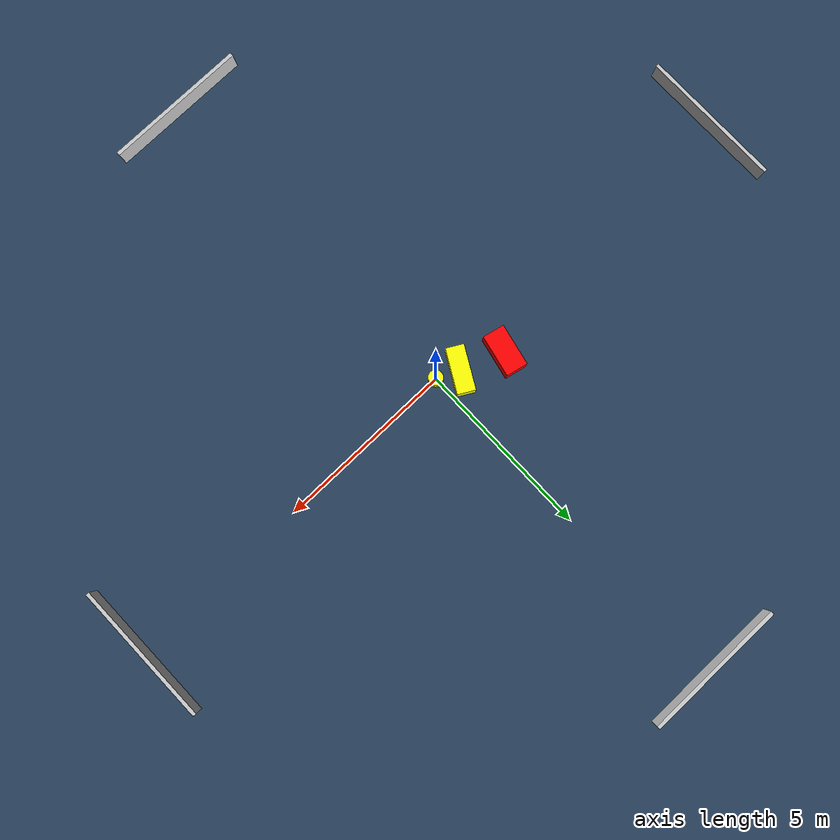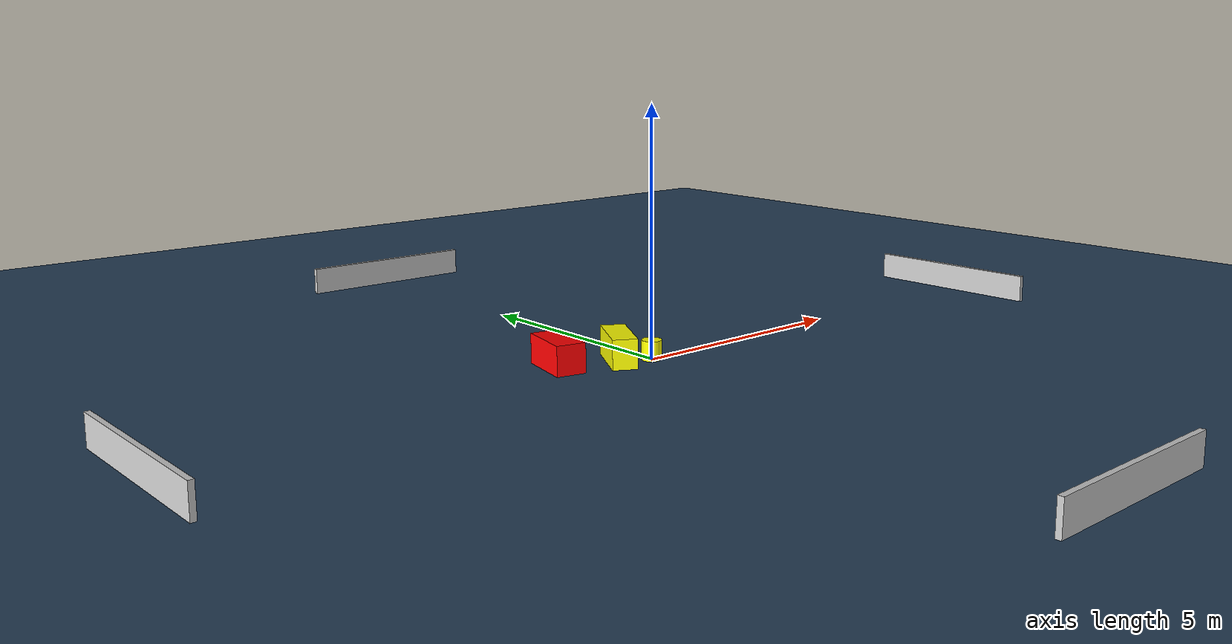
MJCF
<?xml version="1.0" ?>
<mujoco model="generated_environment">
  <option timestep="0.01" integrator="RK4" cone="elliptic"/>
  <default>
    <geom density="1"/>
  </default>
  <asset>
    <texture builtin="gradient" height="3072" name="skybox" rgb1="0.3 0.5 0.7" rgb2="0 0 0" type="skybox" width="512"/>
    <texture builtin="checker" height="300" name="groundplane" rgb1="0.2 0.3 0.4" rgb2="0.1 0.2 0.3" type="2d" width="300"/>
    <material name="groundplane" reflectance="0.2" texrepeat="5 5" texture="groundplane"/>
  </asset>
  <worldbody>
    <light dir="0 0 -1" directional="true" pos="0 0 1.5"/>
    <geom condim="3" friction="0.5 0.005 0.001" material="groundplane" name="floor" pos="0 0 0" size="0 0 0.05" type="plane"/>
    <body name="walls">
      <geom name="wall_1" condim="4" pos="-10.0 0.0 0.3" rgba="0.800000011920929 0.800000011920929 0.800000011920929 1.0" size="0.05 2.0 0.3" type="box"/>
      <geom name="wall_2" condim="4" pos="10.0 0.0 0.3" rgba="0.800000011920929 0.800000011920929 0.800000011920929 1.0" size="0.05 2.0 0.3" type="box"/>
      <geom name="wall_3" condim="4" pos="0.0 -10.0 0.3" rgba="0.800000011920929 0.800000011920929 0.800000011920929 1.0" size="2.0 0.05 0.3" type="box"/>
      <geom name="wall_4" condim="4" pos="0.0 10.0 0.3" rgba="0.800000011920929 0.800000011920929 0.800000011920929 1.0" size="2.0 0.05 0.3" type="box"/>
    </body>
    <body name="robot">
      <joint name="joint_x" type="slide" pos="0 0 0" axis="1 0 0"/>
      <joint name="joint_y" type="slide" pos="0 0 0" axis="0 1 0"/>
      <geom name="robot" type="cylinder" pos="0.0 0.0 0.2" size="0.2 0.2 0.0" mass="5.0" friction="1.0 0.005 0.0001" condim="4" rgba="1.0 1.0 0.0 1.0"/>
    </body>
    <body name="obstacle_1_movable">
      <geom name="obstacle_1_movable" condim="4" pos="-0.593771453139215 0.29682692327806337 0.3" euler="0 0 330.9383110367604" friction="0.0 0.005 0.001" rgba="1.0 1.0 0.0 1.0" size="0.2476953169403305 0.6140743560153297 0.3" type="box" mass="0.1"/>
      <joint type="free"/>
    </body>
    <body name="obstacle_2_static">
      <geom name="obstacle_2_static" condim="4" pos="-1.7538471984584563 0.7315727128209737 0.3" euler="0 0 77.63590636351357" friction="0.0 0.005 0.001" rgba="1.0 0.0 0.0 1.0" size="0.5850902329341086 0.3018060067991647 0.3" type="box"/>
    </body>
  </worldbody>
  <actuator>
    <motor name="actuator_x" joint="joint_x" gear="1" ctrlrange="-1 1"/>
    <motor name="actuator_y" joint="joint_y" gear="1" ctrlrange="-1 1"/>
  </actuator>
</mujoco>
